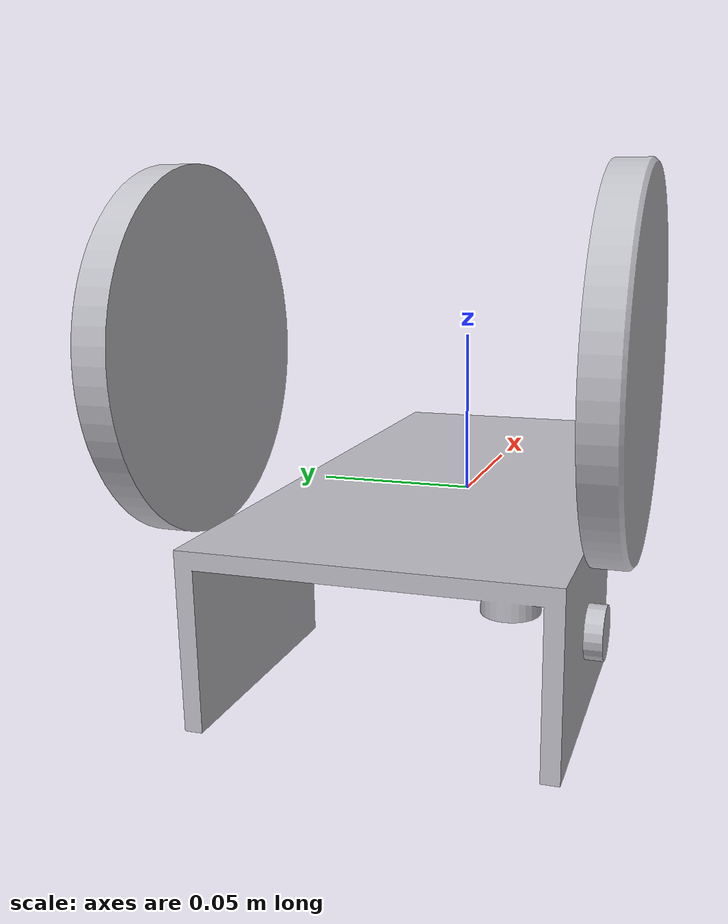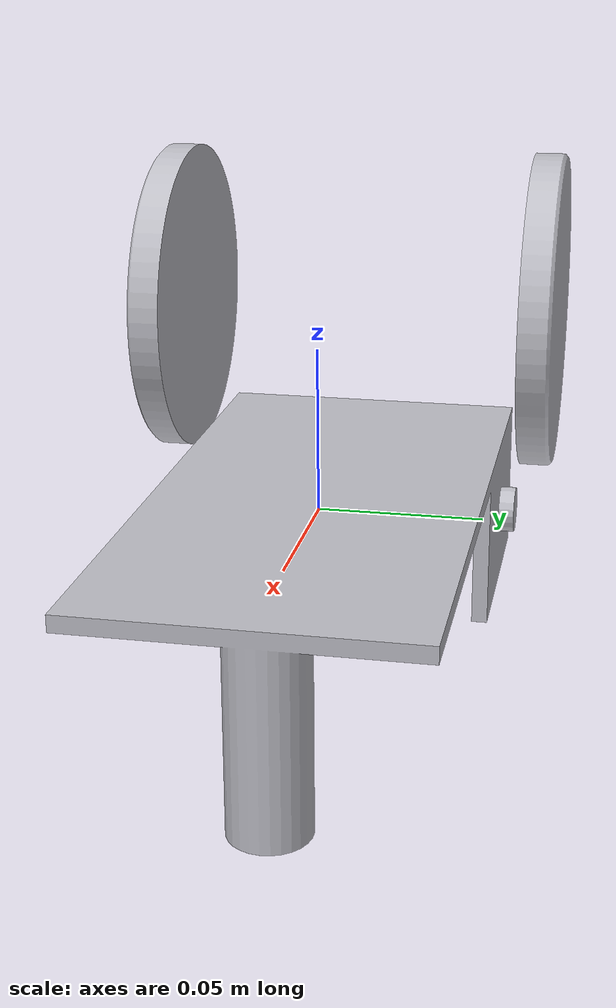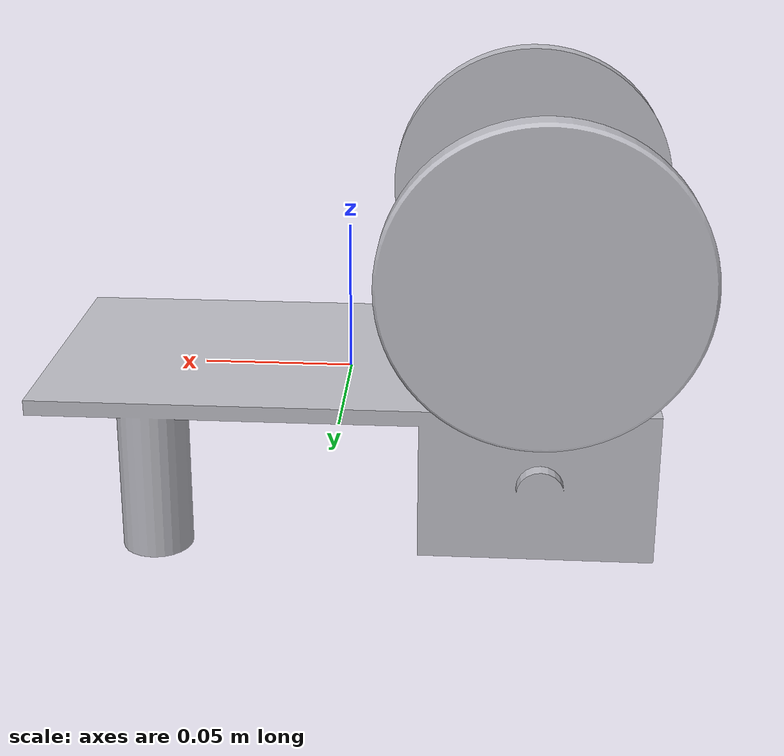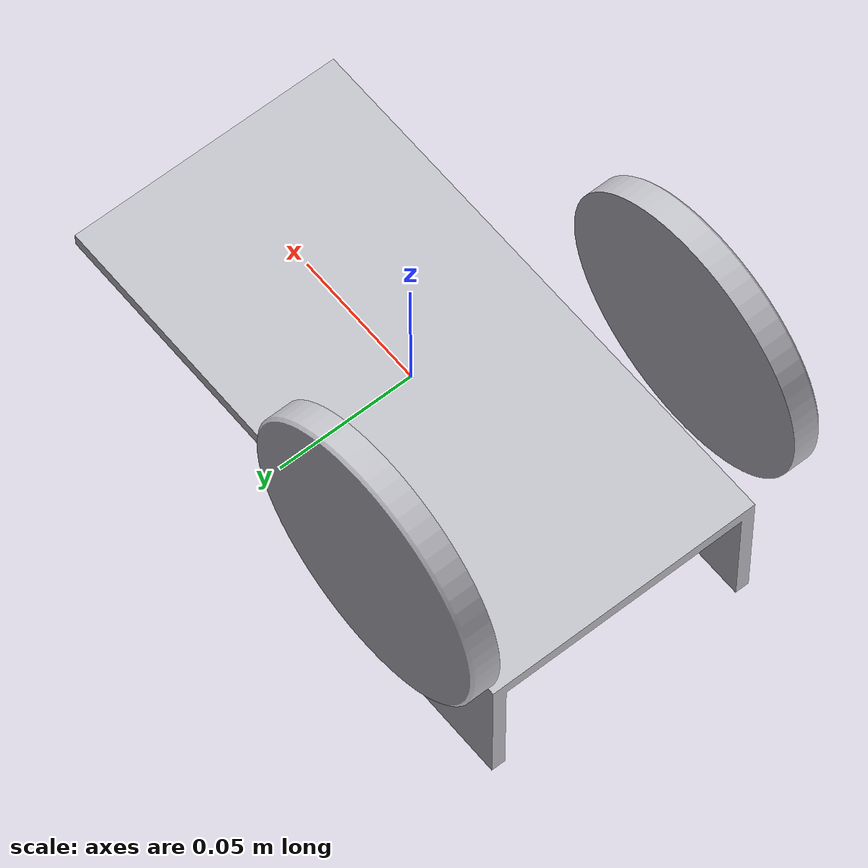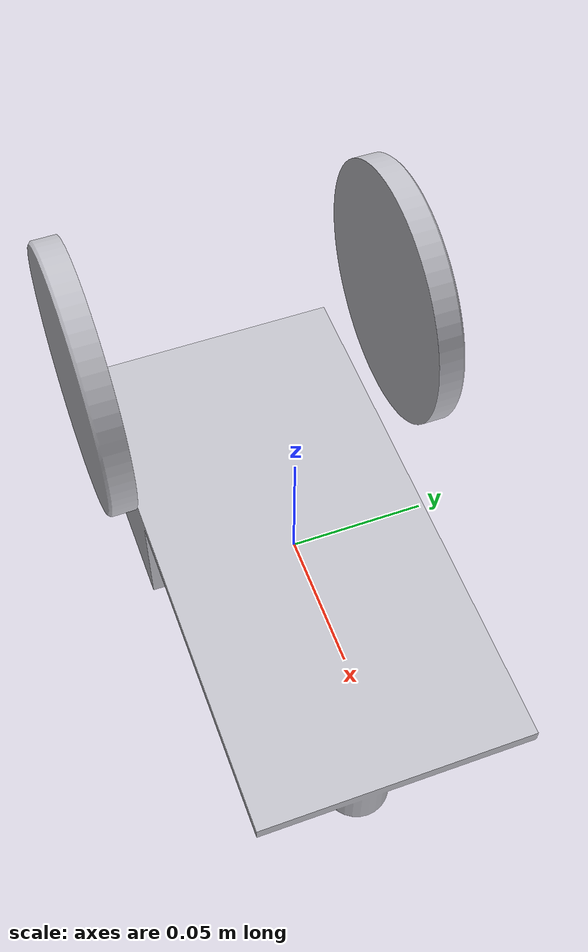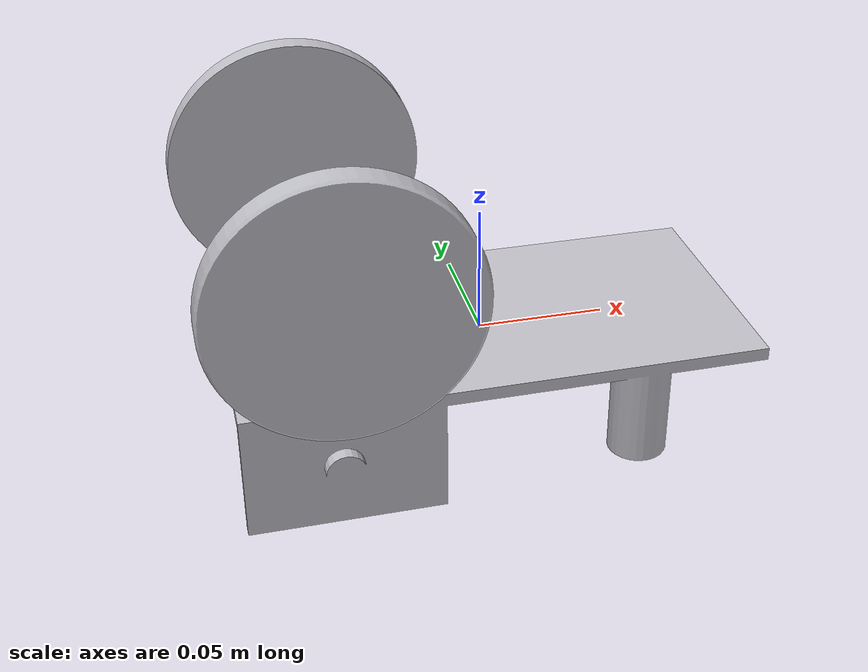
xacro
<?xml version="1.0" ?>
<robot name="base_link" xmlns:xacro="http://www.ros.org/wiki/xacro">

<xacro:include filename="$(find base_link_description)/urdf/materials.xacro" />
<xacro:include filename="$(find base_link_description)/urdf/base_link.trans" />
<xacro:include filename="$(find base_link_description)/urdf/base_link.gazebo" />
<link name="base_link">
  <inertial>
    <origin xyz="0.0010842864645055825 1.2046052333224058e-16 -0.010284098268977257" rpy="0 0 0"/>
    <mass value="1.333544776802818"/>
    <inertia ixx="0.001792" iyy="0.005653" izz="0.006463" ixy="0.0" iyz="0.0" ixz="0.000256"/>
  </inertial>
  <visual>
    <origin xyz="0 0 0" rpy="0 0 0"/>
    <geometry>
      <mesh filename="package://base_link_description/meshes/base_link.stl" scale="0.001 0.001 0.001"/>
    </geometry>
    <material name="silver"/>
  </visual>
  <collision>
    <origin xyz="0 0 0" rpy="0 0 0"/>
    <geometry>
      <mesh filename="package://base_link_description/meshes/base_link.stl" scale="0.001 0.001 0.001"/>
    </geometry>
  </collision>
</link>

<link name="whell_2_1">
  <inertial>
    <origin xyz="4.949864740311227e-09 0.004999999999999921 4.4121930962634504e-07" rpy="0 0 0"/>
    <mass value="0.6165375582669965"/>
    <inertia ixx="0.00039" iyy="0.000771" izz="0.00039" ixy="0.0" iyz="-0.0" ixz="-0.0"/>
  </inertial>
  <visual>
    <origin xyz="0.063215 -0.055 0.019823" rpy="0 0 0"/>
    <geometry>
      <mesh filename="package://base_link_description/meshes/whell_2_1.stl" scale="0.001 0.001 0.001"/>
    </geometry>
    <material name="silver"/>
  </visual>
  <collision>
    <origin xyz="0.063215 -0.055 0.019823" rpy="0 0 0"/>
    <geometry>
      <mesh filename="package://base_link_description/meshes/whell_2_1.stl" scale="0.001 0.001 0.001"/>
    </geometry>
  </collision>
</link>

<link name="whell_1">
  <inertial>
    <origin xyz="4.94986485133353e-09 -0.004999999999999956 4.4121930961246725e-07" rpy="0 0 0"/>
    <mass value="0.6165375582669967"/>
    <inertia ixx="0.00039" iyy="0.000771" izz="0.00039" ixy="-0.0" iyz="0.0" ixz="0.0"/>
  </inertial>
  <visual>
    <origin xyz="0.063215 0.055 0.019823" rpy="0 0 0"/>
    <geometry>
      <mesh filename="package://base_link_description/meshes/whell_1.stl" scale="0.001 0.001 0.001"/>
    </geometry>
    <material name="silver"/>
  </visual>
  <collision>
    <origin xyz="0.063215 0.055 0.019823" rpy="0 0 0"/>
    <geometry>
      <mesh filename="package://base_link_description/meshes/whell_1.stl" scale="0.001 0.001 0.001"/>
    </geometry>
  </collision>
</link>

<joint name="Rev1" type="continuous">
  <origin xyz="-0.063215 0.055 -0.019823" rpy="0 0 0"/>
  <parent link="base_link"/>
  <child link="whell_2_1"/>
  <axis xyz="0.0 1.0 0.0"/>
</joint>

<joint name="Rev2" type="continuous">
  <origin xyz="-0.063215 -0.055 -0.019823" rpy="0 0 0"/>
  <parent link="base_link"/>
  <child link="whell_1"/>
  <axis xyz="0.0 -1.0 0.0"/>
</joint>

</robot>

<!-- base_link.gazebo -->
<robot name="base_link" xmlns:xacro="http://www.ros.org/wiki/xacro" >

<xacro:property name="body_color" value="Gazebo/Silver" />

<gazebo>
  <plugin name="control" filename="libgazebo_ros_control.so"/>
</gazebo>
<gazebo reference="base_link">
  <material>${body_color}</material>
  <mu1>0.2</mu1>
  <mu2>0.2</mu2>
  <selfCollide>true</selfCollide>
  <gravity>true</gravity>
</gazebo>

<gazebo reference="whell_2_1">
  <material>${body_color}</material>
  <mu1>0.2</mu1>
  <mu2>0.2</mu2>
  <selfCollide>true</selfCollide>
</gazebo>

<gazebo reference="whell_1">
  <material>${body_color}</material>
  <mu1>0.2</mu1>
  <mu2>0.2</mu2>
  <selfCollide>true</selfCollide>
</gazebo>

</robot>
